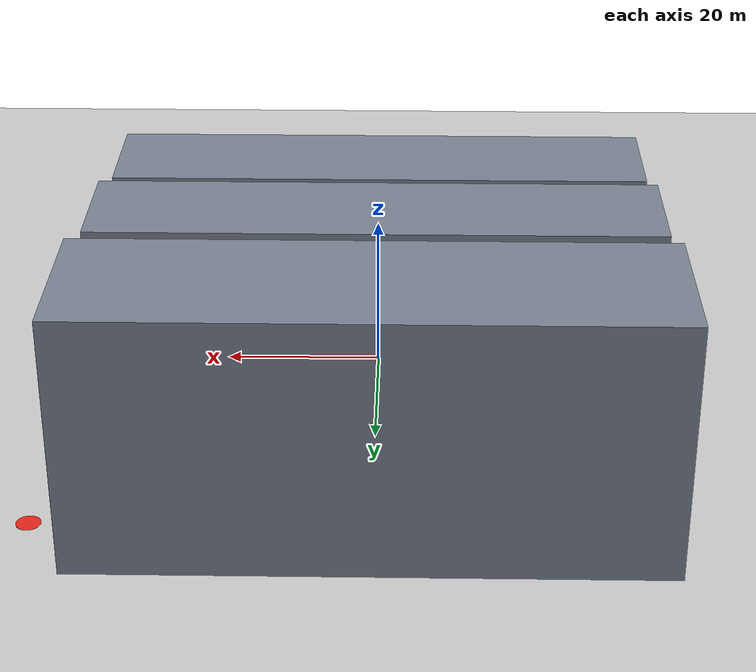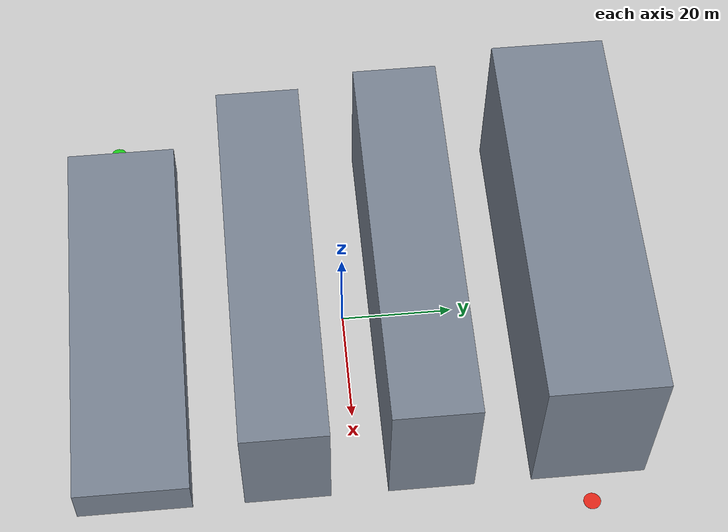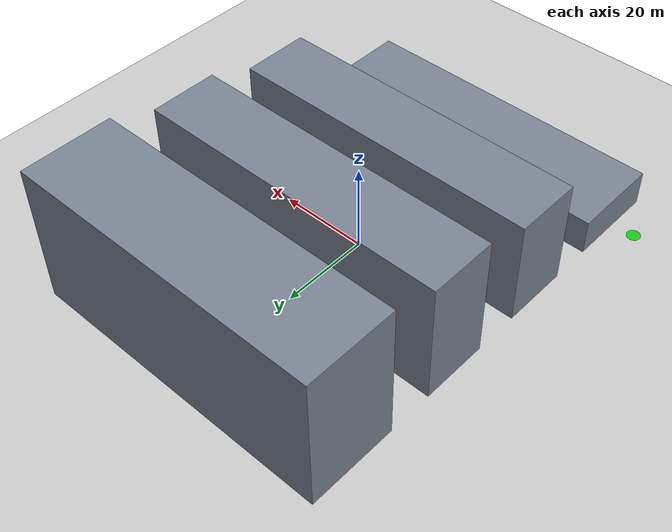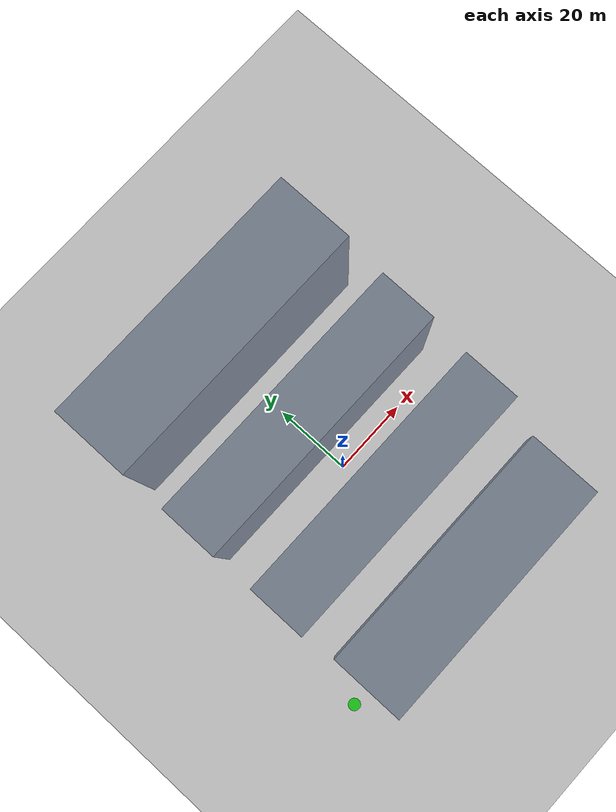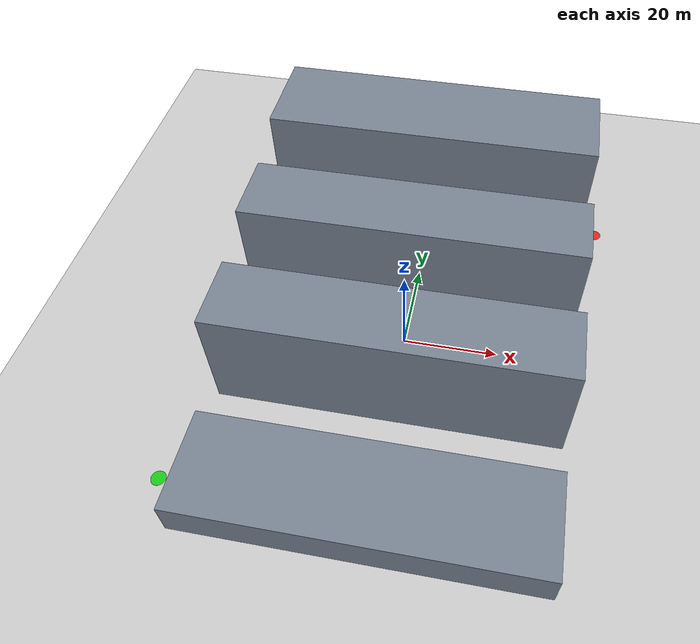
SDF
<?xml version="1.0"?>
<sdf version="1.6"><world name="logistics_1_high_rise_delivery">
  <physics name="default_physics" type="ode"><max_step_size>0.004</max_step_size><real_time_factor>1</real_time_factor><real_time_update_rate>250</real_time_update_rate><magnetic_field>6.0e-6 2.3e-5 -4.2e-5</magnetic_field></physics>
  <gravity>0 0 -9.8066</gravity>
  <include><uri>model://sun</uri></include>
  <include><uri>model://ground_plane</uri></include>
  <spherical_coordinates><surface_model>EARTH_WGS84</surface_model><latitude_deg>47.397742</latitude_deg><longitude_deg>8.545594</longitude_deg><elevation>488</elevation><heading_deg>0</heading_deg></spherical_coordinates>
<model name="obstacle_00_tower_a"><static>true</static><pose>0.000 40.000 16.000 0 0 0</pose><link name="link"><collision name="collision"><geometry><box><size>70.000 20.000 32.000</size></box></geometry></collision><visual name="visual"><geometry><box><size>70.000 20.000 32.000</size></box></geometry><material><ambient>0.48 0.52 0.58 1</ambient><diffuse>0.48 0.52 0.58 1</diffuse></material></visual></link></model>
<model name="obstacle_01_tower_b"><static>true</static><pose>0.000 12.500 14.000 0 0 0</pose><link name="link"><collision name="collision"><geometry><box><size>70.000 15.000 28.000</size></box></geometry></collision><visual name="visual"><geometry><box><size>70.000 15.000 28.000</size></box></geometry><material><ambient>0.48 0.52 0.58 1</ambient><diffuse>0.48 0.52 0.58 1</diffuse></material></visual></link></model>
<model name="obstacle_02_tower_c"><static>true</static><pose>0.000 -12.500 12.000 0 0 0</pose><link name="link"><collision name="collision"><geometry><box><size>70.000 15.000 24.000</size></box></geometry></collision><visual name="visual"><geometry><box><size>70.000 15.000 24.000</size></box></geometry><material><ambient>0.48 0.52 0.58 1</ambient><diffuse>0.48 0.52 0.58 1</diffuse></material></visual></link></model>
<model name="obstacle_03_podium"><static>true</static><pose>0.000 -39.000 4.000 0 0 0</pose><link name="link"><collision name="collision"><geometry><box><size>70.000 20.000 8.000</size></box></geometry></collision><visual name="visual"><geometry><box><size>70.000 20.000 8.000</size></box></geometry><material><ambient>0.48 0.52 0.58 1</ambient><diffuse>0.48 0.52 0.58 1</diffuse></material></visual></link></model>
<model name="start_zone"><static>true</static><pose>-40.000 -40.000 -0.009 0 0 0</pose><link name="link"><visual name="visual"><cast_shadows>false</cast_shadows><geometry><cylinder><radius>1.5</radius><length>0.02</length></cylinder></geometry><material><ambient>0.1 0.8 0.1 1</ambient><diffuse>0.1 0.8 0.1 1</diffuse></material></visual></link></model>
<model name="goal_zone"><static>true</static><pose>40.000 40.000 -0.009 0 0 0</pose><link name="link"><visual name="visual"><cast_shadows>false</cast_shadows><geometry><cylinder><radius>1.5</radius><length>0.02</length></cylinder></geometry><material><ambient>0.9 0.15 0.1 1</ambient><diffuse>0.9 0.15 0.1 1</diffuse></material></visual></link></model>
</world></sdf>
